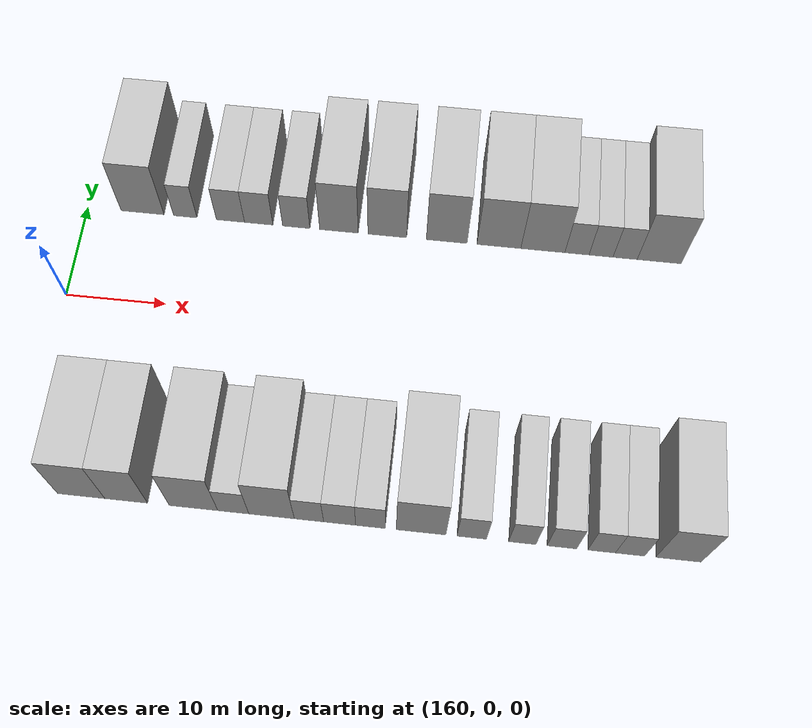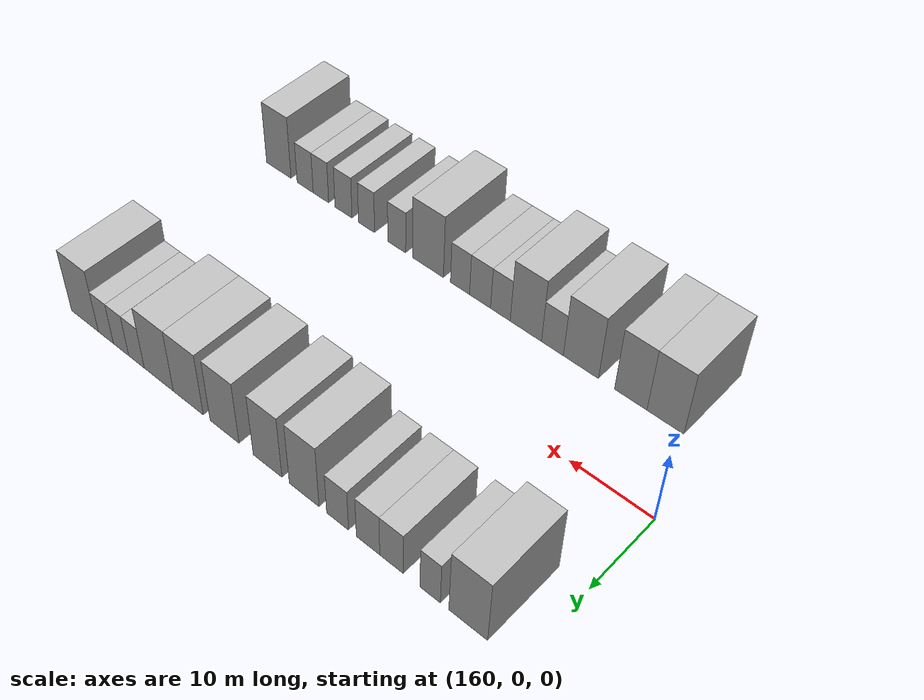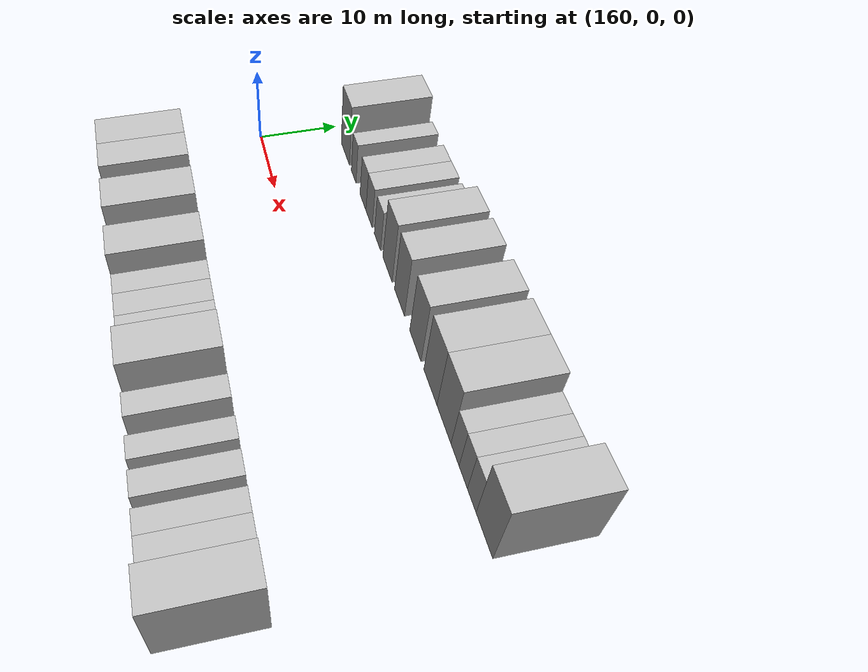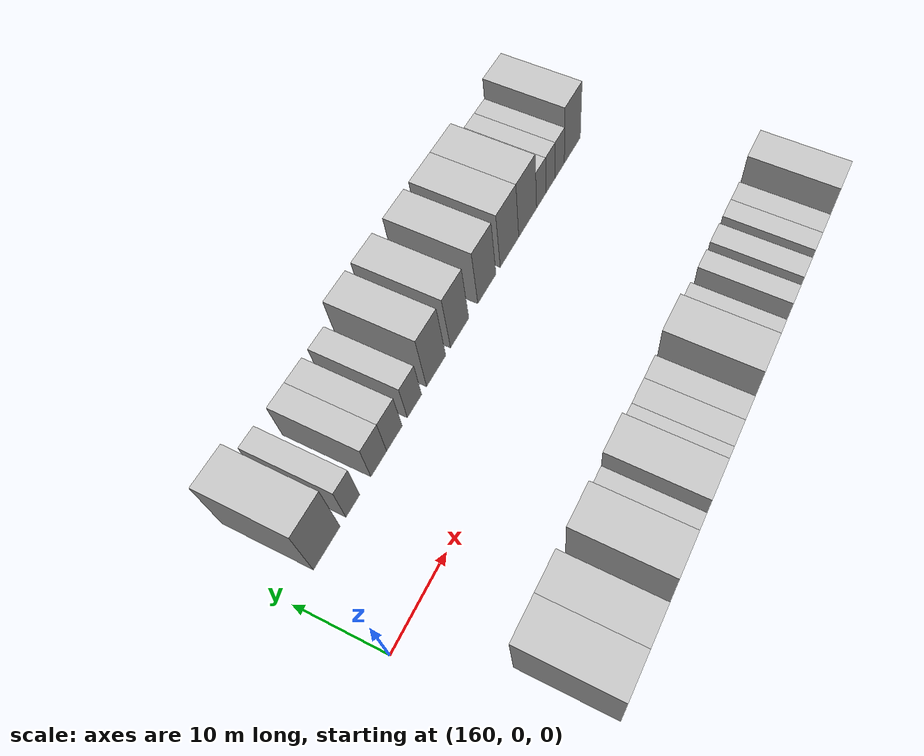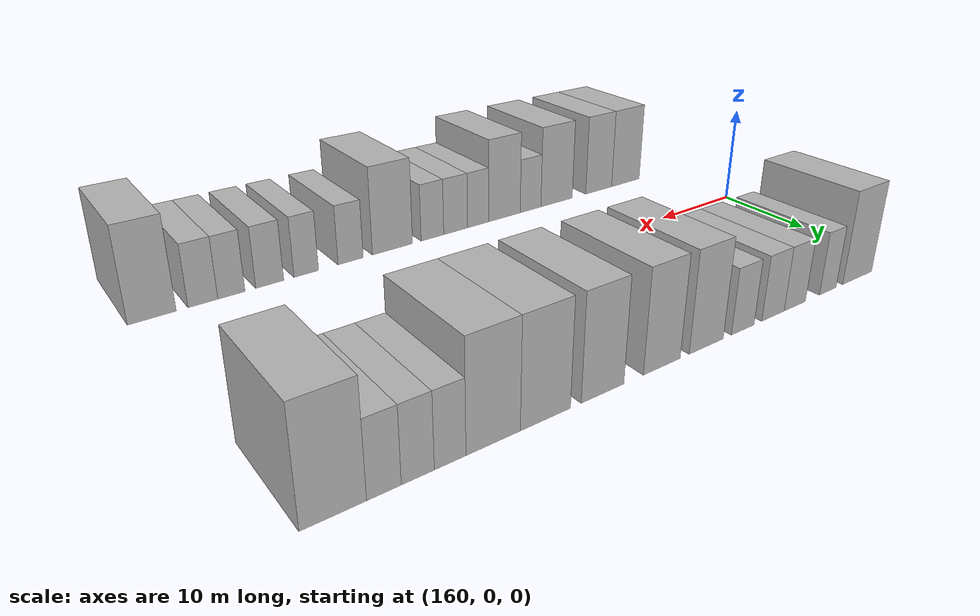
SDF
<sdf version="1.6">
 <world name="default">
  <model name="building_44">
   <static>1</static>
   <pose>165.6594 15.0000 0 0.000000 0.000000 1.570796</pose>
   <link name="link">
    <pose>0 0 4.50 0 0 0</pose>
    <collision name="collision"><geometry><box><size>10.0000 4.4684 9.0000</size></box></geometry></collision>
    <visual name="visual">
     <cast_shadows>0</cast_shadows>
     <geometry><box><size>10.0000 4.4684 9.0000</size></box></geometry>
     <material>
      <script>
       <uri>model://HANNAS_wall/materials/scripts</uri>
       <uri>model://HANNAS_wall/materials/textures</uri>
       <name>vrc/HANNAS_wall</name>
      </script>
     </material>
    </visual>
   </link>
  </model>
  <model name="building_45">
   <static>1</static>
   <pose>170.1038 15.0000 0 0.000000 0.000000 1.570796</pose>
   <link name="link">
    <pose>0 0 3.00 0 0 0</pose>
    <collision name="collision"><geometry><box><size>10.0000 2.4204 6.0000</size></box></geometry></collision>
    <visual name="visual">
     <cast_shadows>0</cast_shadows>
     <geometry><box><size>10.0000 2.4204 6.0000</size></box></geometry>
     <material>
      <script>
       <uri>model://HANNAS_wall/materials/scripts</uri>
       <uri>model://HANNAS_wall/materials/textures</uri>
       <name>vrc/HANNAS_wall</name>
      </script>
     </material>
    </visual>
   </link>
  </model>
  <model name="building_46">
   <static>1</static>
   <pose>174.7673 15.0000 0 0.000000 0.000000 1.570796</pose>
   <link name="link">
    <pose>0 0 3.00 0 0 0</pose>
    <collision name="collision"><geometry><box><size>10.0000 2.9066 6.0000</size></box></geometry></collision>
    <visual name="visual">
     <cast_shadows>0</cast_shadows>
     <geometry><box><size>10.0000 2.9066 6.0000</size></box></geometry>
     <material>
      <script>
       <uri>model://HANNAS_wall/materials/scripts</uri>
       <uri>model://HANNAS_wall/materials/textures</uri>
       <name>vrc/HANNAS_wall</name>
      </script>
     </material>
    </visual>
   </link>
  </model>
  <model name="building_47">
   <static>1</static>
   <pose>177.6863 15.0000 0 0.000000 0.000000 1.570796</pose>
   <link name="link">
    <pose>0 0 3.00 0 0 0</pose>
    <collision name="collision"><geometry><box><size>10.0000 2.9313 6.0000</size></box></geometry></collision>
    <visual name="visual">
     <cast_shadows>0</cast_shadows>
     <geometry><box><size>10.0000 2.9313 6.0000</size></box></geometry>
     <material>
      <script>
       <uri>model://HANNAS_wall/materials/scripts</uri>
       <uri>model://HANNAS_wall/materials/textures</uri>
       <name>vrc/HANNAS_wall</name>
      </script>
     </material>
    </visual>
   </link>
  </model>
  <model name="building_48">
   <static>1</static>
   <pose>181.5532 15.0000 0 0.000000 0.000000 1.570796</pose>
   <link name="link">
    <pose>0 0 3.00 0 0 0</pose>
    <collision name="collision"><geometry><box><size>10.0000 2.8025 6.0000</size></box></geometry></collision>
    <visual name="visual">
     <cast_shadows>0</cast_shadows>
     <geometry><box><size>10.0000 2.8025 6.0000</size></box></geometry>
     <material>
      <script>
       <uri>model://HANNAS_wall/materials/scripts</uri>
       <uri>model://HANNAS_wall/materials/textures</uri>
       <name>vrc/HANNAS_wall</name>
      </script>
     </material>
    </visual>
   </link>
  </model>
  <model name="building_49">
   <static>1</static>
   <pose>185.9270 15.0000 0 0.000000 0.000000 1.570796</pose>
   <link name="link">
    <pose>0 0 4.50 0 0 0</pose>
    <collision name="collision"><geometry><box><size>10.0000 3.9450 9.0000</size></box></geometry></collision>
    <visual name="visual">
     <cast_shadows>0</cast_shadows>
     <geometry><box><size>10.0000 3.9450 9.0000</size></box></geometry>
     <material>
      <script>
       <uri>model://HANNAS_wall/materials/scripts</uri>
       <uri>model://HANNAS_wall/materials/textures</uri>
       <name>vrc/HANNAS_wall</name>
      </script>
     </material>
    </visual>
   </link>
  </model>
  <model name="building_50">
   <static>1</static>
   <pose>190.8726 15.0000 0 0.000000 0.000000 1.570796</pose>
   <link name="link">
    <pose>0 0 4.50 0 0 0</pose>
    <collision name="collision"><geometry><box><size>10.0000 3.9462 9.0000</size></box></geometry></collision>
    <visual name="visual">
     <cast_shadows>0</cast_shadows>
     <geometry><box><size>10.0000 3.9462 9.0000</size></box></geometry>
     <material>
      <script>
       <uri>model://HANNAS_wall/materials/scripts</uri>
       <uri>model://HANNAS_wall/materials/textures</uri>
       <name>vrc/HANNAS_wall</name>
      </script>
     </material>
    </visual>
   </link>
  </model>
  <model name="building_51">
   <static>1</static>
   <pose>196.9149 15.0000 0 0.000000 0.000000 1.570796</pose>
   <link name="link">
    <pose>0 0 4.50 0 0 0</pose>
    <collision name="collision"><geometry><box><size>10.0000 4.1385 9.0000</size></box></geometry></collision>
    <visual name="visual">
     <cast_shadows>0</cast_shadows>
     <geometry><box><size>10.0000 4.1385 9.0000</size></box></geometry>
     <material>
      <script>
       <uri>model://HANNAS_wall/materials/scripts</uri>
       <uri>model://HANNAS_wall/materials/textures</uri>
       <name>vrc/HANNAS_wall</name>
      </script>
     </material>
    </visual>
   </link>
  </model>
  <model name="building_52">
   <static>1</static>
   <pose>202.2018 15.0000 0 0.000000 0.000000 1.570796</pose>
   <link name="link">
    <pose>0 0 4.50 0 0 0</pose>
    <collision name="collision"><geometry><box><size>10.0000 4.4352 9.0000</size></box></geometry></collision>
    <visual name="visual">
     <cast_shadows>0</cast_shadows>
     <geometry><box><size>10.0000 4.4352 9.0000</size></box></geometry>
     <material>
      <script>
       <uri>model://HANNAS_wall/materials/scripts</uri>
       <uri>model://HANNAS_wall/materials/textures</uri>
       <name>vrc/HANNAS_wall</name>
      </script>
     </material>
    </visual>
   </link>
  </model>
  <model name="building_53">
   <static>1</static>
   <pose>206.6403 15.0000 0 0.000000 0.000000 1.570796</pose>
   <link name="link">
    <pose>0 0 4.50 0 0 0</pose>
    <collision name="collision"><geometry><box><size>10.0000 4.4420 9.0000</size></box></geometry></collision>
    <visual name="visual">
     <cast_shadows>0</cast_shadows>
     <geometry><box><size>10.0000 4.4420 9.0000</size></box></geometry>
     <material>
      <script>
       <uri>model://HANNAS_wall/materials/scripts</uri>
       <uri>model://HANNAS_wall/materials/textures</uri>
       <name>vrc/HANNAS_wall</name>
      </script>
     </material>
    </visual>
   </link>
  </model>
  <model name="building_54">
   <static>1</static>
   <pose>210.0744 15.0000 0 0.000000 0.000000 1.570796</pose>
   <link name="link">
    <pose>0 0 3.00 0 0 0</pose>
    <collision name="collision"><geometry><box><size>10.0000 2.4262 6.0000</size></box></geometry></collision>
    <visual name="visual">
     <cast_shadows>0</cast_shadows>
     <geometry><box><size>10.0000 2.4262 6.0000</size></box></geometry>
     <material>
      <script>
       <uri>model://HANNAS_wall/materials/scripts</uri>
       <uri>model://HANNAS_wall/materials/textures</uri>
       <name>vrc/HANNAS_wall</name>
      </script>
     </material>
    </visual>
   </link>
  </model>
  <model name="building_55">
   <static>1</static>
   <pose>212.4924 15.0000 0 0.000000 0.000000 1.570796</pose>
   <link name="link">
    <pose>0 0 3.00 0 0 0</pose>
    <collision name="collision"><geometry><box><size>10.0000 2.4098 6.0000</size></box></geometry></collision>
    <visual name="visual">
     <cast_shadows>0</cast_shadows>
     <geometry><box><size>10.0000 2.4098 6.0000</size></box></geometry>
     <material>
      <script>
       <uri>model://HANNAS_wall/materials/scripts</uri>
       <uri>model://HANNAS_wall/materials/textures</uri>
       <name>vrc/HANNAS_wall</name>
      </script>
     </material>
    </visual>
   </link>
  </model>
  <model name="building_56">
   <static>1</static>
   <pose>214.9073 15.0000 0 0.000000 0.000000 1.570796</pose>
   <link name="link">
    <pose>0 0 3.00 0 0 0</pose>
    <collision name="collision"><geometry><box><size>10.0000 2.4200 6.0000</size></box></geometry></collision>
    <visual name="visual">
     <cast_shadows>0</cast_shadows>
     <geometry><box><size>10.0000 2.4200 6.0000</size></box></geometry>
     <material>
      <script>
       <uri>model://HANNAS_wall/materials/scripts</uri>
       <uri>model://HANNAS_wall/materials/textures</uri>
       <name>vrc/HANNAS_wall</name>
      </script>
     </material>
    </visual>
   </link>
  </model>
  <model name="building_57">
   <static>1</static>
   <pose>218.3203 15.0000 0 0.000000 0.000000 1.570796</pose>
   <link name="link">
    <pose>0 0 4.50 0 0 0</pose>
    <collision name="collision"><geometry><box><size>10.0000 4.4059 9.0000</size></box></geometry></collision>
    <visual name="visual">
     <cast_shadows>0</cast_shadows>
     <geometry><box><size>10.0000 4.4059 9.0000</size></box></geometry>
     <material>
      <script>
       <uri>model://HANNAS_wall/materials/scripts</uri>
       <uri>model://HANNAS_wall/materials/textures</uri>
       <name>vrc/HANNAS_wall</name>
      </script>
     </material>
    </visual>
   </link>
  </model>
  <model name="building_100">
   <static>1</static>
   <pose>165.9148 -15.0000 0 0.000000 0.000000 1.570796</pose>
   <link name="link">
    <pose>0 0 4.50 0 0 0</pose>
    <collision name="collision"><geometry><box><size>10.0000 4.4018 9.0000</size></box></geometry></collision>
    <visual name="visual">
     <cast_shadows>0</cast_shadows>
     <geometry><box><size>10.0000 4.4018 9.0000</size></box></geometry>
     <material>
      <script>
       <uri>model://HANNAS_wall/materials/scripts</uri>
       <uri>model://HANNAS_wall/materials/textures</uri>
       <name>vrc/HANNAS_wall</name>
      </script>
     </material>
    </visual>
   </link>
  </model>
  <model name="building_101">
   <static>1</static>
   <pose>170.0994 -15.0000 0 0.000000 0.000000 1.570796</pose>
   <link name="link">
    <pose>0 0 4.50 0 0 0</pose>
    <collision name="collision"><geometry><box><size>10.0000 3.9675 9.0000</size></box></geometry></collision>
    <visual name="visual">
     <cast_shadows>0</cast_shadows>
     <geometry><box><size>10.0000 3.9675 9.0000</size></box></geometry>
     <material>
      <script>
       <uri>model://HANNAS_wall/materials/scripts</uri>
       <uri>model://HANNAS_wall/materials/textures</uri>
       <name>vrc/HANNAS_wall</name>
      </script>
     </material>
    </visual>
   </link>
  </model>
  <model name="building_102">
   <static>1</static>
   <pose>176.3247 -15.0000 0 0.000000 0.000000 1.570796</pose>
   <link name="link">
    <pose>0 0 4.50 0 0 0</pose>
    <collision name="collision"><geometry><box><size>10.0000 4.4831 9.0000</size></box></geometry></collision>
    <visual name="visual">
     <cast_shadows>0</cast_shadows>
     <geometry><box><size>10.0000 4.4831 9.0000</size></box></geometry>
     <material>
      <script>
       <uri>model://HANNAS_wall/materials/scripts</uri>
       <uri>model://HANNAS_wall/materials/textures</uri>
       <name>vrc/HANNAS_wall</name>
      </script>
     </material>
    </visual>
   </link>
  </model>
  <model name="building_103">
   <static>1</static>
   <pose>179.9890 -15.0000 0 0.000000 0.000000 1.570796</pose>
   <link name="link">
    <pose>0 0 3.00 0 0 0</pose>
    <collision name="collision"><geometry><box><size>10.0000 2.8454 6.0000</size></box></geometry></collision>
    <visual name="visual">
     <cast_shadows>0</cast_shadows>
     <geometry><box><size>10.0000 2.8454 6.0000</size></box></geometry>
     <material>
      <script>
       <uri>model://HANNAS_wall/materials/scripts</uri>
       <uri>model://HANNAS_wall/materials/textures</uri>
       <name>vrc/HANNAS_wall</name>
      </script>
     </material>
    </visual>
   </link>
  </model>
  <model name="building_104">
   <static>1</static>
   <pose>183.4970 -15.0000 0 0.000000 0.000000 1.570796</pose>
   <link name="link">
    <pose>0 0 4.50 0 0 0</pose>
    <collision name="collision"><geometry><box><size>10.0000 4.1706 9.0000</size></box></geometry></collision>
    <visual name="visual">
     <cast_shadows>0</cast_shadows>
     <geometry><box><size>10.0000 4.1706 9.0000</size></box></geometry>
     <material>
      <script>
       <uri>model://HANNAS_wall/materials/scripts</uri>
       <uri>model://HANNAS_wall/materials/textures</uri>
       <name>vrc/HANNAS_wall</name>
      </script>
     </material>
    </visual>
   </link>
  </model>
  <model name="building_105">
   <static>1</static>
   <pose>186.9197 -15.0000 0 0.000000 0.000000 1.570796</pose>
   <link name="link">
    <pose>0 0 3.00 0 0 0</pose>
    <collision name="collision"><geometry><box><size>10.0000 2.6746 6.0000</size></box></geometry></collision>
    <visual name="visual">
     <cast_shadows>0</cast_shadows>
     <geometry><box><size>10.0000 2.6746 6.0000</size></box></geometry>
     <material>
      <script>
       <uri>model://HANNAS_wall/materials/scripts</uri>
       <uri>model://HANNAS_wall/materials/textures</uri>
       <name>vrc/HANNAS_wall</name>
      </script>
     </material>
    </visual>
   </link>
  </model>
  <model name="building_106">
   <static>1</static>
   <pose>189.7164 -15.0000 0 0.000000 0.000000 1.570796</pose>
   <link name="link">
    <pose>0 0 3.00 0 0 0</pose>
    <collision name="collision"><geometry><box><size>10.0000 2.9188 6.0000</size></box></geometry></collision>
    <visual name="visual">
     <cast_shadows>0</cast_shadows>
     <geometry><box><size>10.0000 2.9188 6.0000</size></box></geometry>
     <material>
      <script>
       <uri>model://HANNAS_wall/materials/scripts</uri>
       <uri>model://HANNAS_wall/materials/textures</uri>
       <name>vrc/HANNAS_wall</name>
      </script>
     </material>
    </visual>
   </link>
  </model>
  <model name="building_107">
   <static>1</static>
   <pose>192.5179 -15.0000 0 0.000000 0.000000 1.570796</pose>
   <link name="link">
    <pose>0 0 3.00 0 0 0</pose>
    <collision name="collision"><geometry><box><size>10.0000 2.6842 6.0000</size></box></geometry></collision>
    <visual name="visual">
     <cast_shadows>0</cast_shadows>
     <geometry><box><size>10.0000 2.6842 6.0000</size></box></geometry>
     <material>
      <script>
       <uri>model://HANNAS_wall/materials/scripts</uri>
       <uri>model://HANNAS_wall/materials/textures</uri>
       <name>vrc/HANNAS_wall</name>
      </script>
     </material>
    </visual>
   </link>
  </model>
  <model name="building_108">
   <static>1</static>
   <pose>197.1072 -15.0000 0 0.000000 0.000000 1.570796</pose>
   <link name="link">
    <pose>0 0 4.50 0 0 0</pose>
    <collision name="collision"><geometry><box><size>10.0000 4.4944 9.0000</size></box></geometry></collision>
    <visual name="visual">
     <cast_shadows>0</cast_shadows>
     <geometry><box><size>10.0000 4.4944 9.0000</size></box></geometry>
     <material>
      <script>
       <uri>model://HANNAS_wall/materials/scripts</uri>
       <uri>model://HANNAS_wall/materials/textures</uri>
       <name>vrc/HANNAS_wall</name>
      </script>
     </material>
    </visual>
   </link>
  </model>
  <model name="building_109">
   <static>1</static>
   <pose>201.6840 -15.0000 0 0.000000 0.000000 1.570796</pose>
   <link name="link">
    <pose>0 0 3.00 0 0 0</pose>
    <collision name="collision"><geometry><box><size>10.0000 2.6592 6.0000</size></box></geometry></collision>
    <visual name="visual">
     <cast_shadows>0</cast_shadows>
     <geometry><box><size>10.0000 2.6592 6.0000</size></box></geometry>
     <material>
      <script>
       <uri>model://HANNAS_wall/materials/scripts</uri>
       <uri>model://HANNAS_wall/materials/textures</uri>
       <name>vrc/HANNAS_wall</name>
      </script>
     </material>
    </visual>
   </link>
  </model>
  <model name="building_110">
   <static>1</static>
   <pose>206.2373 -15.0000 0 0.000000 0.000000 1.570796</pose>
   <link name="link">
    <pose>0 0 3.00 0 0 0</pose>
    <collision name="collision"><geometry><box><size>10.0000 2.4474 6.0000</size></box></geometry></collision>
    <visual name="visual">
     <cast_shadows>0</cast_shadows>
     <geometry><box><size>10.0000 2.4474 6.0000</size></box></geometry>
     <material>
      <script>
       <uri>model://HANNAS_wall/materials/scripts</uri>
       <uri>model://HANNAS_wall/materials/textures</uri>
       <name>vrc/HANNAS_wall</name>
      </script>
     </material>
    </visual>
   </link>
  </model>
  <model name="building_111">
   <static>1</static>
   <pose>209.7883 -15.0000 0 0.000000 0.000000 1.570796</pose>
   <link name="link">
    <pose>0 0 3.00 0 0 0</pose>
    <collision name="collision"><geometry><box><size>10.0000 2.6545 6.0000</size></box></geometry></collision>
    <visual name="visual">
     <cast_shadows>0</cast_shadows>
     <geometry><box><size>10.0000 2.6545 6.0000</size></box></geometry>
     <material>
      <script>
       <uri>model://HANNAS_wall/materials/scripts</uri>
       <uri>model://HANNAS_wall/materials/textures</uri>
       <name>vrc/HANNAS_wall</name>
      </script>
     </material>
    </visual>
   </link>
  </model>
  <model name="building_112">
   <static>1</static>
   <pose>213.3446 -15.0000 0 0.000000 0.000000 1.570796</pose>
   <link name="link">
    <pose>0 0 3.00 0 0 0</pose>
    <collision name="collision"><geometry><box><size>10.0000 2.4581 6.0000</size></box></geometry></collision>
    <visual name="visual">
     <cast_shadows>0</cast_shadows>
     <geometry><box><size>10.0000 2.4581 6.0000</size></box></geometry>
     <material>
      <script>
       <uri>model://HANNAS_wall/materials/scripts</uri>
       <uri>model://HANNAS_wall/materials/textures</uri>
       <name>vrc/HANNAS_wall</name>
      </script>
     </material>
    </visual>
   </link>
  </model>
  <model name="building_113">
   <static>1</static>
   <pose>215.8762 -15.0000 0 0.000000 0.000000 1.570796</pose>
   <link name="link">
    <pose>0 0 3.00 0 0 0</pose>
    <collision name="collision"><geometry><box><size>10.0000 2.6050 6.0000</size></box></geometry></collision>
    <visual name="visual">
     <cast_shadows>0</cast_shadows>
     <geometry><box><size>10.0000 2.6050 6.0000</size></box></geometry>
     <material>
      <script>
       <uri>model://HANNAS_wall/materials/scripts</uri>
       <uri>model://HANNAS_wall/materials/textures</uri>
       <name>vrc/HANNAS_wall</name>
      </script>
     </material>
    </visual>
   </link>
  </model>
  <model name="building_114">
   <static>1</static>
   <pose>220.1916 -15.0000 0 0.000000 0.000000 1.570796</pose>
   <link name="link">
    <pose>0 0 4.50 0 0 0</pose>
    <collision name="collision"><geometry><box><size>10.0000 4.0259 9.0000</size></box></geometry></collision>
    <visual name="visual">
     <cast_shadows>0</cast_shadows>
     <geometry><box><size>10.0000 4.0259 9.0000</size></box></geometry>
     <material>
      <script>
       <uri>model://HANNAS_wall/materials/scripts</uri>
       <uri>model://HANNAS_wall/materials/textures</uri>
       <name>vrc/HANNAS_wall</name>
      </script>
     </material>
    </visual>
   </link>
  </model>
 </world>
</sdf>
